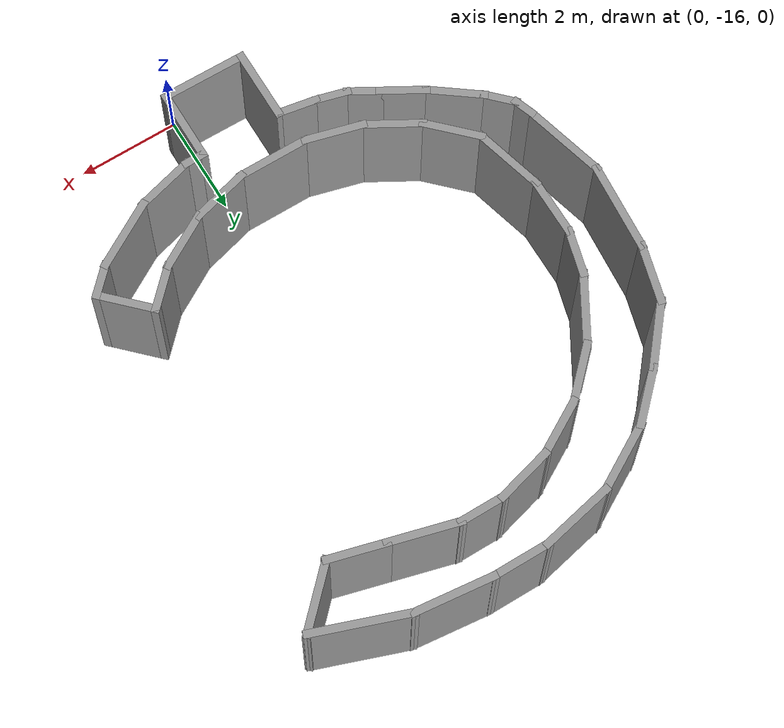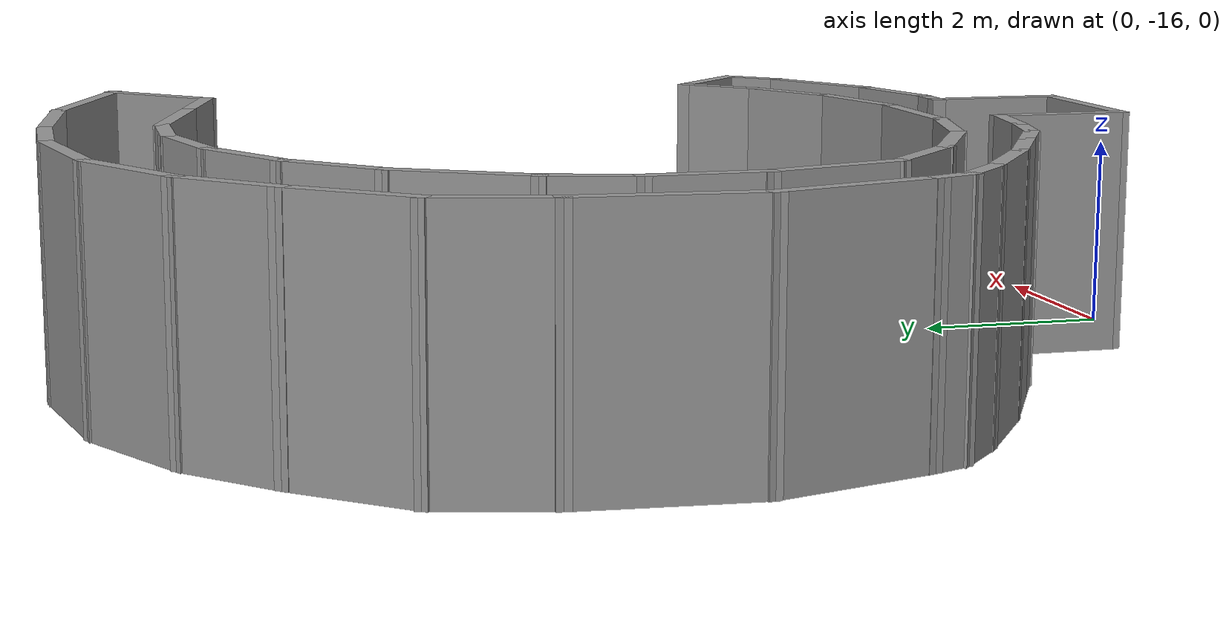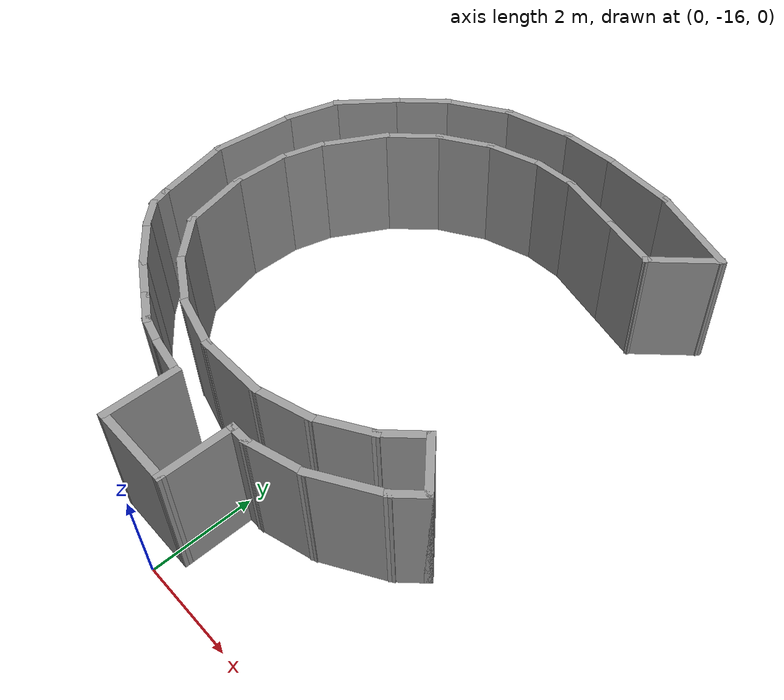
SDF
<?xml version='1.0'?>
<sdf version='1.7'>
  <model name='walls'>
    <pose>-1.21721 -7.78467 0 0 -0 0</pose>
    <link name='Wall_47'>
      <collision name='Wall_47_Collision'>
        <geometry>
          <box>
            <size>1 0.15 2.5</size>
          </box>
        </geometry>
        <pose>0 0 1.25 0 -0 0</pose>
      </collision>
      <visual name='Wall_47_Visual'>
        <pose>0 0 1.25 0 -0 0</pose>
        <geometry>
          <box>
            <size>1 0.15 2.5</size>
          </box>
        </geometry>
        <material>
          <script>
            <uri>file://media/materials/scripts/gazebo.material</uri>
            <name>Gazebo/Grey</name>
          </script>
          <ambient>1 1 1 1</ambient>
        </material>
        <meta>
          <layer>0</layer>
        </meta>
      </visual>
      <pose>0.710889 1.98634 0 0 -0 3.14159</pose>
    </link>
    <link name='Wall_48'>
      <collision name='Wall_48_Collision'>
        <geometry>
          <box>
            <size>1.25 0.15 2.5</size>
          </box>
        </geometry>
        <pose>0 0 1.25 0 -0 0</pose>
      </collision>
      <visual name='Wall_48_Visual'>
        <pose>0 0 1.25 0 -0 0</pose>
        <geometry>
          <box>
            <size>1.25 0.15 2.5</size>
          </box>
        </geometry>
        <material>
          <script>
            <uri>file://media/materials/scripts/gazebo.material</uri>
            <name>Gazebo/Grey</name>
          </script>
          <ambient>1 1 1 1</ambient>
        </material>
        <meta>
          <layer>0</layer>
        </meta>
      </visual>
      <pose>-0.24537 1.84399 0 0 -0 -2.87979</pose>
    </link>
    <link name='Wall_49'>
      <collision name='Wall_49_Collision'>
        <geometry>
          <box>
            <size>1.25 0.15 2.5</size>
          </box>
        </geometry>
        <pose>0 0 1.25 0 -0 0</pose>
      </collision>
      <visual name='Wall_49_Visual'>
        <pose>0 0 1.25 0 -0 0</pose>
        <geometry>
          <box>
            <size>1.25 0.15 2.5</size>
          </box>
        </geometry>
        <material>
          <script>
            <uri>file://media/materials/scripts/gazebo.material</uri>
            <name>Gazebo/Grey</name>
          </script>
          <ambient>1 1 1 1</ambient>
        </material>
        <meta>
          <layer>0</layer>
        </meta>
      </visual>
      <pose>-1.25294 1.42664 0 0 -0 -2.61799</pose>
    </link>
    <link name='Wall_50'>
      <collision name='Wall_50_Collision'>
        <geometry>
          <box>
            <size>1.25 0.15 2.5</size>
          </box>
        </geometry>
        <pose>0 0 1.25 0 -0 0</pose>
      </collision>
      <visual name='Wall_50_Visual'>
        <pose>0 0 1.25 0 -0 0</pose>
        <geometry>
          <box>
            <size>1.25 0.15 2.5</size>
          </box>
        </geometry>
        <material>
          <script>
            <uri>file://media/materials/scripts/gazebo.material</uri>
            <name>Gazebo/Grey</name>
          </script>
          <ambient>1 1 1 1</ambient>
        </material>
        <meta>
          <layer>0</layer>
        </meta>
      </visual>
      <pose>-2.11817 0.762734 0 0 -0 -2.35619</pose>
    </link>
    <link name='Wall_51'>
      <collision name='Wall_51_Collision'>
        <geometry>
          <box>
            <size>1.5 0.15 2.5</size>
          </box>
        </geometry>
        <pose>0 0 1.25 0 -0 0</pose>
      </collision>
      <visual name='Wall_51_Visual'>
        <pose>0 0 1.25 0 -0 0</pose>
        <geometry>
          <box>
            <size>1.5 0.15 2.5</size>
          </box>
        </geometry>
        <material>
          <script>
            <uri>file://media/materials/scripts/gazebo.material</uri>
            <name>Gazebo/Grey</name>
          </script>
          <ambient>1 1 1 1</ambient>
        </material>
        <meta>
          <layer>0</layer>
        </meta>
      </visual>
      <pose>-2.84457 -0.210742 0 0 -0 -2.0944</pose>
    </link>
    <link name='Wall_52'>
      <collision name='Wall_52_Collision'>
        <geometry>
          <box>
            <size>1 0.15 2.5</size>
          </box>
        </geometry>
        <pose>0 0 1.25 0 -0 0</pose>
      </collision>
      <visual name='Wall_52_Visual'>
        <pose>0 0 1.25 0 -0 0</pose>
        <geometry>
          <box>
            <size>1 0.15 2.5</size>
          </box>
        </geometry>
        <material>
          <script>
            <uri>file://media/materials/scripts/gazebo.material</uri>
            <name>Gazebo/Grey</name>
          </script>
          <ambient>1 1 1 1</ambient>
        </material>
        <meta>
          <layer>0</layer>
        </meta>
      </visual>
      <pose>-3.29207 -1.20583 0 0 -0 -1.8326</pose>
    </link>
    <link name='Wall_53'>
      <collision name='Wall_53_Collision'>
        <geometry>
          <box>
            <size>1.25 0.15 2.5</size>
          </box>
        </geometry>
        <pose>0 0 1.25 0 -0 0</pose>
      </collision>
      <visual name='Wall_53_Visual'>
        <pose>0 0 1.25 0 -0 0</pose>
        <geometry>
          <box>
            <size>1.25 0.15 2.5</size>
          </box>
        </geometry>
        <material>
          <script>
            <uri>file://media/materials/scripts/gazebo.material</uri>
            <name>Gazebo/Grey</name>
          </script>
          <ambient>1 1 1 1</ambient>
        </material>
        <meta>
          <layer>0</layer>
        </meta>
      </visual>
      <pose>-3.40207 -2.16635 0 0 -0 -1.5708</pose>
    </link>
    <link name='Wall_54'>
      <collision name='Wall_54_Collision'>
        <geometry>
          <box>
            <size>1.5 0.15 2.5</size>
          </box>
        </geometry>
        <pose>0 0 1.25 0 -0 0</pose>
      </collision>
      <visual name='Wall_54_Visual'>
        <pose>0 0 1.25 0 -0 0</pose>
        <geometry>
          <box>
            <size>1.5 0.15 2.5</size>
          </box>
        </geometry>
        <material>
          <script>
            <uri>file://media/materials/scripts/gazebo.material</uri>
            <name>Gazebo/Grey</name>
          </script>
          <ambient>1 1 1 1</ambient>
        </material>
        <meta>
          <layer>0</layer>
        </meta>
      </visual>
      <pose>-3.22737 -3.36835 0 0 -0 -1.309</pose>
    </link>
    <link name='Wall_55'>
      <collision name='Wall_55_Collision'>
        <geometry>
          <box>
            <size>1.25 0.15 2.5</size>
          </box>
        </geometry>
        <pose>0 0 1.25 0 -0 0</pose>
      </collision>
      <visual name='Wall_55_Visual'>
        <pose>0 0 1.25 0 -0 0</pose>
        <geometry>
          <box>
            <size>1.25 0.15 2.5</size>
          </box>
        </geometry>
        <material>
          <script>
            <uri>file://media/materials/scripts/gazebo.material</uri>
            <name>Gazebo/Grey</name>
          </script>
          <ambient>1 1 1 1</ambient>
        </material>
        <meta>
          <layer>0</layer>
        </meta>
      </visual>
      <pose>-2.66376 -4.40925 0 0 -0 -0.785398</pose>
    </link>
    <link name='Wall_56'>
      <collision name='Wall_56_Collision'>
        <geometry>
          <box>
            <size>1.25 0.15 2.5</size>
          </box>
        </geometry>
        <pose>0 0 1.25 0 -0 0</pose>
      </collision>
      <visual name='Wall_56_Visual'>
        <pose>0 0 1.25 0 -0 0</pose>
        <geometry>
          <box>
            <size>1.25 0.15 2.5</size>
          </box>
        </geometry>
        <material>
          <script>
            <uri>file://media/materials/scripts/gazebo.material</uri>
            <name>Gazebo/Grey</name>
          </script>
          <ambient>1 1 1 1</ambient>
        </material>
        <meta>
          <layer>0</layer>
        </meta>
      </visual>
      <pose>-1.79853 -5.07316 0 0 -0 -0.523599</pose>
    </link>
    <link name='Wall_57'>
      <collision name='Wall_57_Collision'>
        <geometry>
          <box>
            <size>1.25 0.15 2.5</size>
          </box>
        </geometry>
        <pose>0 0 1.25 0 -0 0</pose>
      </collision>
      <visual name='Wall_57_Visual'>
        <pose>0 0 1.25 0 -0 0</pose>
        <geometry>
          <box>
            <size>1.25 0.15 2.5</size>
          </box>
        </geometry>
        <material>
          <script>
            <uri>file://media/materials/scripts/gazebo.material</uri>
            <name>Gazebo/Grey</name>
          </script>
          <ambient>1 1 1 1</ambient>
        </material>
        <meta>
          <layer>0</layer>
        </meta>
      </visual>
      <pose>-0.790961 -5.49051 0 0 -0 -0.261799</pose>
    </link>
    <link name='Wall_58'>
      <collision name='Wall_58_Collision'>
        <geometry>
          <box>
            <size>1.5 0.15 2.5</size>
          </box>
        </geometry>
        <pose>0 0 1.25 0 -0 0</pose>
      </collision>
      <visual name='Wall_58_Visual'>
        <pose>0 0 1.25 0 -0 0</pose>
        <geometry>
          <box>
            <size>1.5 0.15 2.5</size>
          </box>
        </geometry>
        <material>
          <script>
            <uri>file://media/materials/scripts/gazebo.material</uri>
            <name>Gazebo/Grey</name>
          </script>
          <ambient>1 1 1 1</ambient>
        </material>
        <meta>
          <layer>0</layer>
        </meta>
      </visual>
      <pose>0.415299 -5.63286 0 0 -0 0</pose>
    </link>
    <link name='Wall_59'>
      <collision name='Wall_59_Collision'>
        <geometry>
          <box>
            <size>1.25 0.15 2.5</size>
          </box>
        </geometry>
        <pose>0 0 1.25 0 -0 0</pose>
      </collision>
      <visual name='Wall_59_Visual'>
        <pose>0 0 1.25 0 -0 0</pose>
        <geometry>
          <box>
            <size>1.25 0.15 2.5</size>
          </box>
        </geometry>
        <material>
          <script>
            <uri>file://media/materials/scripts/gazebo.material</uri>
            <name>Gazebo/Grey</name>
          </script>
          <ambient>1 1 1 1</ambient>
        </material>
        <meta>
          <layer>0</layer>
        </meta>
      </visual>
      <pose>1.62156 -5.49051 0 0 -0 0.261799</pose>
    </link>
    <link name='Wall_60'>
      <collision name='Wall_60_Collision'>
        <geometry>
          <box>
            <size>1.25 0.15 2.5</size>
          </box>
        </geometry>
        <pose>0 0 1.25 0 -0 0</pose>
      </collision>
      <visual name='Wall_60_Visual'>
        <pose>0 0 1.25 0 -0 0</pose>
        <geometry>
          <box>
            <size>1.25 0.15 2.5</size>
          </box>
        </geometry>
        <material>
          <script>
            <uri>file://media/materials/scripts/gazebo.material</uri>
            <name>Gazebo/Grey</name>
          </script>
          <ambient>1 1 1 1</ambient>
        </material>
        <meta>
          <layer>0</layer>
        </meta>
      </visual>
      <pose>2.62913 -5.07316 0 0 -0 0.523599</pose>
    </link>
    <link name='Wall_61'>
      <collision name='Wall_61_Collision'>
        <geometry>
          <box>
            <size>1 0.15 2.5</size>
          </box>
        </geometry>
        <pose>0 0 1.25 0 -0 0</pose>
      </collision>
      <visual name='Wall_61_Visual'>
        <pose>0 0 1.25 0 -0 0</pose>
        <geometry>
          <box>
            <size>1 0.15 2.5</size>
          </box>
        </geometry>
        <material>
          <script>
            <uri>file://media/materials/scripts/gazebo.material</uri>
            <name>Gazebo/Grey</name>
          </script>
          <ambient>1 1 1 1</ambient>
        </material>
        <meta>
          <layer>0</layer>
        </meta>
      </visual>
      <pose>3.40597 -4.49764 0 0 -0 0.785398</pose>
    </link>
    <link name='Wall_62'>
      <collision name='Wall_62_Collision'>
        <geometry>
          <box>
            <size>1.25 0.15 2.5</size>
          </box>
        </geometry>
        <pose>0 0 1.25 0 -0 0</pose>
      </collision>
      <visual name='Wall_62_Visual'>
        <pose>0 0 1.25 0 -0 0</pose>
        <geometry>
          <box>
            <size>1.25 0.15 2.5</size>
          </box>
        </geometry>
        <material>
          <script>
            <uri>file://media/materials/scripts/gazebo.material</uri>
            <name>Gazebo/Grey</name>
          </script>
          <ambient>1 1 1 1</ambient>
        </material>
        <meta>
          <layer>0</layer>
        </meta>
      </visual>
      <pose>4.09539 -4.58603 0 0 -0 -0.785398</pose>
    </link>
    <link name='Wall_63'>
      <collision name='Wall_63_Collision'>
        <geometry>
          <box>
            <size>0.75 0.15 2.5</size>
          </box>
        </geometry>
        <pose>0 0 1.25 0 -0 0</pose>
      </collision>
      <visual name='Wall_63_Visual'>
        <pose>0 0 1.25 0 -0 0</pose>
        <geometry>
          <box>
            <size>0.75 0.15 2.5</size>
          </box>
        </geometry>
        <material>
          <script>
            <uri>file://media/materials/scripts/gazebo.material</uri>
            <name>Gazebo/Grey</name>
          </script>
          <ambient>1 1 1 1</ambient>
        </material>
        <meta>
          <layer>0</layer>
        </meta>
      </visual>
      <pose>4.27217 -5.18707 0 0 -0 -2.35619</pose>
    </link>
    <link name='Wall_64'>
      <collision name='Wall_64_Collision'>
        <geometry>
          <box>
            <size>1.5 0.15 2.5</size>
          </box>
        </geometry>
        <pose>0 0 1.25 0 -0 0</pose>
      </collision>
      <visual name='Wall_64_Visual'>
        <pose>0 0 1.25 0 -0 0</pose>
        <geometry>
          <box>
            <size>1.5 0.15 2.5</size>
          </box>
        </geometry>
        <material>
          <script>
            <uri>file://media/materials/scripts/gazebo.material</uri>
            <name>Gazebo/Grey</name>
          </script>
          <ambient>1 1 1 1</ambient>
        </material>
        <meta>
          <layer>0</layer>
        </meta>
      </visual>
      <pose>3.47547 -5.7367 0 0 -0 -2.61799</pose>
    </link>
    <link name='Wall_65'>
      <collision name='Wall_65_Collision'>
        <geometry>
          <box>
            <size>1.25 0.15 2.5</size>
          </box>
        </geometry>
        <pose>0 0 1.25 0 -0 0</pose>
      </collision>
      <visual name='Wall_65_Visual'>
        <pose>0 0 1.25 0 -0 0</pose>
        <geometry>
          <box>
            <size>1.25 0.15 2.5</size>
          </box>
        </geometry>
        <material>
          <script>
            <uri>file://media/materials/scripts/gazebo.material</uri>
            <name>Gazebo/Grey</name>
          </script>
          <ambient>1 1 1 1</ambient>
        </material>
        <meta>
          <layer>0</layer>
        </meta>
      </visual>
      <pose>2.35964 -6.21655 0 0 -0 -2.87979</pose>
    </link>
    <link name='Wall_66'>
      <collision name='Wall_66_Collision'>
        <geometry>
          <box>
            <size>0.5 0.15 2.5</size>
          </box>
        </geometry>
        <pose>0 0 1.25 0 -0 0</pose>
      </collision>
      <visual name='Wall_66_Visual'>
        <pose>0 0 1.25 0 -0 0</pose>
        <geometry>
          <box>
            <size>0.5 0.15 2.5</size>
          </box>
        </geometry>
        <material>
          <script>
            <uri>file://media/materials/scripts/gazebo.material</uri>
            <name>Gazebo/Grey</name>
          </script>
          <ambient>1 1 1 1</ambient>
        </material>
        <meta>
          <layer>0</layer>
        </meta>
      </visual>
      <pose>1.65339 -6.35891 0 0 -0 3.14159</pose>
    </link>
    <link name='Wall_68'>
      <collision name='Wall_68_Collision'>
        <geometry>
          <box>
            <size>1.5 0.15 2.5</size>
          </box>
        </geometry>
        <pose>0 0 1.25 0 -0 0</pose>
      </collision>
      <visual name='Wall_68_Visual'>
        <pose>0 0 1.25 0 -0 0</pose>
        <geometry>
          <box>
            <size>1.5 0.15 2.5</size>
          </box>
        </geometry>
        <material>
          <script>
            <uri>file://media/materials/scripts/gazebo.material</uri>
            <name>Gazebo/Grey</name>
          </script>
          <ambient>1 1 1 1</ambient>
        </material>
        <meta>
          <layer>0</layer>
        </meta>
      </visual>
      <pose>1.78789 1.81164 0 0 -0 -0.261799</pose>
    </link>
    <link name='Wall_69'>
      <collision name='Wall_69_Collision'>
        <geometry>
          <box>
            <size>1.25 0.15 2.5</size>
          </box>
        </geometry>
        <pose>0 0 1.25 0 -0 0</pose>
      </collision>
      <visual name='Wall_69_Visual'>
        <pose>0 0 1.25 0 -0 0</pose>
        <geometry>
          <box>
            <size>1.25 0.15 2.5</size>
          </box>
        </geometry>
        <material>
          <script>
            <uri>file://media/materials/scripts/gazebo.material</uri>
            <name>Gazebo/Grey</name>
          </script>
          <ambient>1 1 1 1</ambient>
        </material>
        <meta>
          <layer>0</layer>
        </meta>
      </visual>
      <pose>2.97115 1.49459 0 0 -0 -0.261799</pose>
    </link>
    <link name='Wall_70'>
      <collision name='Wall_70_Collision'>
        <geometry>
          <box>
            <size>1.5 0.15 2.5</size>
          </box>
        </geometry>
        <pose>0 0 1.25 0 -0 0</pose>
      </collision>
      <visual name='Wall_70_Visual'>
        <pose>0 0 1.25 0 -0 0</pose>
        <geometry>
          <box>
            <size>1.5 0.15 2.5</size>
          </box>
        </geometry>
        <material>
          <script>
            <uri>file://media/materials/scripts/gazebo.material</uri>
            <name>Gazebo/Grey</name>
          </script>
          <ambient>1 1 1 1</ambient>
        </material>
        <meta>
          <layer>0</layer>
        </meta>
      </visual>
      <pose>3.9797 1.82953 0 0 -0 0.785398</pose>
    </link>
    <link name='Wall_71'>
      <collision name='Wall_71_Collision'>
        <geometry>
          <box>
            <size>2.02688 0.15 2.5</size>
          </box>
        </geometry>
        <pose>0 0 1.25 0 -0 0</pose>
      </collision>
      <visual name='Wall_71_Visual'>
        <pose>0 0 1.25 0 -0 0</pose>
        <geometry>
          <box>
            <size>2.02688 0.15 2.5</size>
          </box>
        </geometry>
        <material>
          <script>
            <uri>file://media/materials/scripts/gazebo.material</uri>
            <name>Gazebo/Grey</name>
          </script>
          <ambient>1 1 1 1</ambient>
        </material>
        <meta>
          <layer>0</layer>
        </meta>
      </visual>
      <pose>3.57374 2.62388 0 0 -0 2.79696</pose>
    </link>
    <link name='Wall_72'>
      <collision name='Wall_72_Collision'>
        <geometry>
          <box>
            <size>1.67504 0.15 2.5</size>
          </box>
        </geometry>
        <pose>0 0 1.25 0 -0 0</pose>
      </collision>
      <visual name='Wall_72_Visual'>
        <pose>0 0 1.25 0 -0 0</pose>
        <geometry>
          <box>
            <size>1.67504 0.15 2.5</size>
          </box>
        </geometry>
        <material>
          <script>
            <uri>file://media/materials/scripts/gazebo.material</uri>
            <name>Gazebo/Grey</name>
          </script>
          <ambient>1 1 1 1</ambient>
        </material>
        <meta>
          <layer>0</layer>
        </meta>
      </visual>
      <pose>1.93256 3.02457 0 0 -0 3.0317</pose>
    </link>
    <link name='Wall_73'>
      <collision name='Wall_73_Collision'>
        <geometry>
          <box>
            <size>1.25 0.15 2.5</size>
          </box>
        </geometry>
        <pose>0 0 1.25 0 -0 0</pose>
      </collision>
      <visual name='Wall_73_Visual'>
        <pose>0 0 1.25 0 -0 0</pose>
        <geometry>
          <box>
            <size>1.25 0.15 2.5</size>
          </box>
        </geometry>
        <material>
          <script>
            <uri>file://media/materials/scripts/gazebo.material</uri>
            <name>Gazebo/Grey</name>
          </script>
          <ambient>1 1 1 1</ambient>
        </material>
        <meta>
          <layer>0</layer>
        </meta>
      </visual>
      <pose>0.62464 3.1082 0 0 -0 3.14159</pose>
    </link>
    <link name='Wall_74'>
      <collision name='Wall_74_Collision'>
        <geometry>
          <box>
            <size>1.58196 0.15 2.5</size>
          </box>
        </geometry>
        <pose>0 0 1.25 0 -0 0</pose>
      </collision>
      <visual name='Wall_74_Visual'>
        <pose>0 0 1.25 0 -0 0</pose>
        <geometry>
          <box>
            <size>1.58196 0.15 2.5</size>
          </box>
        </geometry>
        <material>
          <script>
            <uri>file://media/materials/scripts/gazebo.material</uri>
            <name>Gazebo/Grey</name>
          </script>
          <ambient>1 1 1 1</ambient>
        </material>
        <meta>
          <layer>0</layer>
        </meta>
      </visual>
      <pose>-0.625141 2.95676 0 0 -0 -2.92848</pose>
    </link>
    <link name='Wall_75'>
      <collision name='Wall_75_Collision'>
        <geometry>
          <box>
            <size>1.5 0.15 2.5</size>
          </box>
        </geometry>
        <pose>0 0 1.25 0 -0 0</pose>
      </collision>
      <visual name='Wall_75_Visual'>
        <pose>0 0 1.25 0 -0 0</pose>
        <geometry>
          <box>
            <size>1.5 0.15 2.5</size>
          </box>
        </geometry>
        <material>
          <script>
            <uri>file://media/materials/scripts/gazebo.material</uri>
            <name>Gazebo/Grey</name>
          </script>
          <ambient>1 1 1 1</ambient>
        </material>
        <meta>
          <layer>0</layer>
        </meta>
      </visual>
      <pose>-1.90949 2.46783 0 0 -0 -2.61799</pose>
    </link>
    <link name='Wall_76'>
      <collision name='Wall_76_Collision'>
        <geometry>
          <box>
            <size>1.25 0.15 2.5</size>
          </box>
        </geometry>
        <pose>0 0 1.25 0 -0 0</pose>
      </collision>
      <visual name='Wall_76_Visual'>
        <pose>0 0 1.25 0 -0 0</pose>
        <geometry>
          <box>
            <size>1.25 0.15 2.5</size>
          </box>
        </geometry>
        <material>
          <script>
            <uri>file://media/materials/scripts/gazebo.material</uri>
            <name>Gazebo/Grey</name>
          </script>
          <ambient>1 1 1 1</ambient>
        </material>
        <meta>
          <layer>0</layer>
        </meta>
      </visual>
      <pose>-2.88296 1.74142 0 0 -0 -2.35619</pose>
    </link>
    <link name='Wall_77'>
      <collision name='Wall_77_Collision'>
        <geometry>
          <box>
            <size>1.42674 0.15 2.5</size>
          </box>
        </geometry>
        <pose>0 0 1.25 0 -0 0</pose>
      </collision>
      <visual name='Wall_77_Visual'>
        <pose>0 0 1.25 0 -0 0</pose>
        <geometry>
          <box>
            <size>1.42674 0.15 2.5</size>
          </box>
        </geometry>
        <material>
          <script>
            <uri>file://media/materials/scripts/gazebo.material</uri>
            <name>Gazebo/Grey</name>
          </script>
          <ambient>1 1 1 1</ambient>
        </material>
        <meta>
          <layer>0</layer>
        </meta>
      </visual>
      <pose>-3.67814 0.860104 0 0 -0 -2.26063</pose>
    </link>
    <link name='Wall_78'>
      <collision name='Wall_78_Collision'>
        <geometry>
          <box>
            <size>1.25 0.15 2.5</size>
          </box>
        </geometry>
        <pose>0 0 1.25 0 -0 0</pose>
      </collision>
      <visual name='Wall_78_Visual'>
        <pose>0 0 1.25 0 -0 0</pose>
        <geometry>
          <box>
            <size>1.25 0.15 2.5</size>
          </box>
        </geometry>
        <material>
          <script>
            <uri>file://media/materials/scripts/gazebo.material</uri>
            <name>Gazebo/Grey</name>
          </script>
          <ambient>1 1 1 1</ambient>
        </material>
        <meta>
          <layer>0</layer>
        </meta>
      </visual>
      <pose>-4.22675 -0.163566 0 0 -0 -1.8326</pose>
    </link>
    <link name='Wall_79'>
      <collision name='Wall_79_Collision'>
        <geometry>
          <box>
            <size>1.84694 0.15 2.5</size>
          </box>
        </geometry>
        <pose>0 0 1.25 0 -0 0</pose>
      </collision>
      <visual name='Wall_79_Visual'>
        <pose>0 0 1.25 0 -0 0</pose>
        <geometry>
          <box>
            <size>1.84694 0.15 2.5</size>
          </box>
        </geometry>
        <material>
          <script>
            <uri>file://media/materials/scripts/gazebo.material</uri>
            <name>Gazebo/Grey</name>
          </script>
          <ambient>1 1 1 1</ambient>
        </material>
        <meta>
          <layer>0</layer>
        </meta>
      </visual>
      <pose>-4.43381 -1.54082 0 0 -0 -1.64713</pose>
    </link>
    <link name='Wall_80'>
      <collision name='Wall_80_Collision'>
        <geometry>
          <box>
            <size>1.75 0.15 2.5</size>
          </box>
        </geometry>
        <pose>0 0 1.25 0 -0 0</pose>
      </collision>
      <visual name='Wall_80_Visual'>
        <pose>0 0 1.25 0 -0 0</pose>
        <geometry>
          <box>
            <size>1.75 0.15 2.5</size>
          </box>
        </geometry>
        <material>
          <script>
            <uri>file://media/materials/scripts/gazebo.material</uri>
            <name>Gazebo/Grey</name>
          </script>
          <ambient>1 1 1 1</ambient>
        </material>
        <meta>
          <layer>0</layer>
        </meta>
      </visual>
      <pose>-4.29146 -3.15957 0 0 -0 -1.309</pose>
    </link>
    <link name='Wall_81'>
      <collision name='Wall_81_Collision'>
        <geometry>
          <box>
            <size>0.514311 0.15 2.5</size>
          </box>
        </geometry>
        <pose>0 0 1.25 0 -0 0</pose>
      </collision>
      <visual name='Wall_81_Visual'>
        <pose>0 0 1.25 0 -0 0</pose>
        <geometry>
          <box>
            <size>0.514311 0.15 2.5</size>
          </box>
        </geometry>
        <material>
          <script>
            <uri>file://media/materials/scripts/gazebo.material</uri>
            <name>Gazebo/Grey</name>
          </script>
          <ambient>1 1 1 1</ambient>
        </material>
        <meta>
          <layer>0</layer>
        </meta>
      </visual>
      <pose>-4.02279 -4.10372 0 0 -0 -1.22575</pose>
    </link>
    <link name='Wall_82'>
      <collision name='Wall_82_Collision'>
        <geometry>
          <box>
            <size>0.75 0.15 2.5</size>
          </box>
        </geometry>
        <pose>0 0 1.25 0 -0 0</pose>
      </collision>
      <visual name='Wall_82_Visual'>
        <pose>0 0 1.25 0 -0 0</pose>
        <geometry>
          <box>
            <size>0.75 0.15 2.5</size>
          </box>
        </geometry>
        <material>
          <script>
            <uri>file://media/materials/scripts/gazebo.material</uri>
            <name>Gazebo/Grey</name>
          </script>
          <ambient>1 1 1 1</ambient>
        </material>
        <meta>
          <layer>0</layer>
        </meta>
      </visual>
      <pose>-3.74905 -4.48728 0 0 -0 -0.785398</pose>
    </link>
    <link name='Wall_83'>
      <collision name='Wall_83_Collision'>
        <geometry>
          <box>
            <size>1.22381 0.15 2.5</size>
          </box>
        </geometry>
        <pose>0 0 1.25 0 -0 0</pose>
      </collision>
      <visual name='Wall_83_Visual'>
        <pose>0 0 1.25 0 -0 0</pose>
        <geometry>
          <box>
            <size>1.22381 0.15 2.5</size>
          </box>
        </geometry>
        <material>
          <script>
            <uri>file://media/materials/scripts/gazebo.material</uri>
            <name>Gazebo/Grey</name>
          </script>
          <ambient>1 1 1 1</ambient>
        </material>
        <meta>
          <layer>0</layer>
        </meta>
      </visual>
      <pose>-3.10636 -5.02016 0 0 -0 -0.640272</pose>
    </link>
    <link name='Wall_84'>
      <collision name='Wall_84_Collision'>
        <geometry>
          <box>
            <size>1 0.15 2.5</size>
          </box>
        </geometry>
        <pose>0 0 1.25 0 -0 0</pose>
      </collision>
      <visual name='Wall_84_Visual'>
        <pose>0 0 1.25 0 -0 0</pose>
        <geometry>
          <box>
            <size>1 0.15 2.5</size>
          </box>
        </geometry>
        <material>
          <script>
            <uri>file://media/materials/scripts/gazebo.material</uri>
            <name>Gazebo/Grey</name>
          </script>
          <ambient>1 1 1 1</ambient>
        </material>
        <meta>
          <layer>0</layer>
        </meta>
      </visual>
      <pose>-2.30773 -5.55342 0 0 -0 -0.523599</pose>
    </link>
    <link name='Wall_85'>
      <collision name='Wall_85_Collision'>
        <geometry>
          <box>
            <size>0.75 0.15 2.5</size>
          </box>
        </geometry>
        <pose>0 0 1.25 0 -0 0</pose>
      </collision>
      <visual name='Wall_85_Visual'>
        <pose>0 0 1.25 0 -0 0</pose>
        <geometry>
          <box>
            <size>0.75 0.15 2.5</size>
          </box>
        </geometry>
        <material>
          <script>
            <uri>file://media/materials/scripts/gazebo.material</uri>
            <name>Gazebo/Grey</name>
          </script>
          <ambient>1 1 1 1</ambient>
        </material>
        <meta>
          <layer>0</layer>
        </meta>
      </visual>
      <pose>-1.67986 -5.91592 0 0 -0 -0.523599</pose>
    </link>
    <link name='Wall_86'>
      <collision name='Wall_86_Collision'>
        <geometry>
          <box>
            <size>0.75 0.15 2.5</size>
          </box>
        </geometry>
        <pose>0 0 1.25 0 -0 0</pose>
      </collision>
      <visual name='Wall_86_Visual'>
        <pose>0 0 1.25 0 -0 0</pose>
        <geometry>
          <box>
            <size>0.75 0.15 2.5</size>
          </box>
        </geometry>
        <material>
          <script>
            <uri>file://media/materials/scripts/gazebo.material</uri>
            <name>Gazebo/Grey</name>
          </script>
          <ambient>1 1 1 1</ambient>
        </material>
        <meta>
          <layer>0</layer>
        </meta>
      </visual>
      <pose>-1.13028 -6.14356 0 0 -0 -0.261799</pose>
    </link>
    <link name='Wall_87'>
      <collision name='Wall_87_Collision'>
        <geometry>
          <box>
            <size>0.841643 0.15 2.5</size>
          </box>
        </geometry>
        <pose>0 0 1.25 0 -0 0</pose>
      </collision>
      <visual name='Wall_87_Visual'>
        <pose>0 0 1.25 0 -0 0</pose>
        <geometry>
          <box>
            <size>0.841643 0.15 2.5</size>
          </box>
        </geometry>
        <material>
          <script>
            <uri>file://media/materials/scripts/gazebo.material</uri>
            <name>Gazebo/Grey</name>
          </script>
          <ambient>1 1 1 1</ambient>
        </material>
        <meta>
          <layer>0</layer>
        </meta>
      </visual>
      <pose>-0.500046 -6.28189 0 0 -0 -0.176389</pose>
    </link>
    <link name='Wall_88'>
      <collision name='Wall_88_Collision'>
        <geometry>
          <box>
            <size>1.5 0.15 2.5</size>
          </box>
        </geometry>
        <pose>0 0 1.25 0 -0 0</pose>
      </collision>
      <visual name='Wall_88_Visual'>
        <pose>0 0 1.25 0 -0 0</pose>
        <geometry>
          <box>
            <size>1.5 0.15 2.5</size>
          </box>
        </geometry>
        <material>
          <script>
            <uri>file://media/materials/scripts/gazebo.material</uri>
            <name>Gazebo/Grey</name>
          </script>
          <ambient>1 1 1 1</ambient>
        </material>
        <meta>
          <layer>0</layer>
        </meta>
      </visual>
      <pose>-0.119135 -7.01757 0 0 -0 -1.5708</pose>
    </link>
    <link name='Wall_90'>
      <collision name='Wall_90_Collision'>
        <geometry>
          <box>
            <size>1.5 0.15 2.5</size>
          </box>
        </geometry>
        <pose>0 0 1.25 0 -0 0</pose>
      </collision>
      <visual name='Wall_90_Visual'>
        <pose>0 0 1.25 0 -0 0</pose>
        <geometry>
          <box>
            <size>1.5 0.15 2.5</size>
          </box>
        </geometry>
        <material>
          <script>
            <uri>file://media/materials/scripts/gazebo.material</uri>
            <name>Gazebo/Grey</name>
          </script>
          <ambient>1 1 1 1</ambient>
        </material>
        <meta>
          <layer>0</layer>
        </meta>
      </visual>
      <pose>1.47839 -7.0339 0 0 -0 -1.5708</pose>
    </link>
    <link name='Wall_91'>
      <collision name='Wall_91_Collision'>
        <geometry>
          <box>
            <size>1.74761 0.15 2.5</size>
          </box>
        </geometry>
        <pose>0 0 1.25 0 -0 0</pose>
      </collision>
      <visual name='Wall_91_Visual'>
        <pose>0 0 1.25 0 -0 0</pose>
        <geometry>
          <box>
            <size>1.74761 0.15 2.5</size>
          </box>
        </geometry>
        <material>
          <script>
            <uri>file://media/materials/scripts/gazebo.material</uri>
            <name>Gazebo/Grey</name>
          </script>
          <ambient>1 1 1 1</ambient>
        </material>
        <meta>
          <layer>0</layer>
        </meta>
      </visual>
      <pose>0.679626 -7.70074 0 0 -0 3.13137</pose>
    </link>
    <static>1</static>
  </model>
</sdf>
